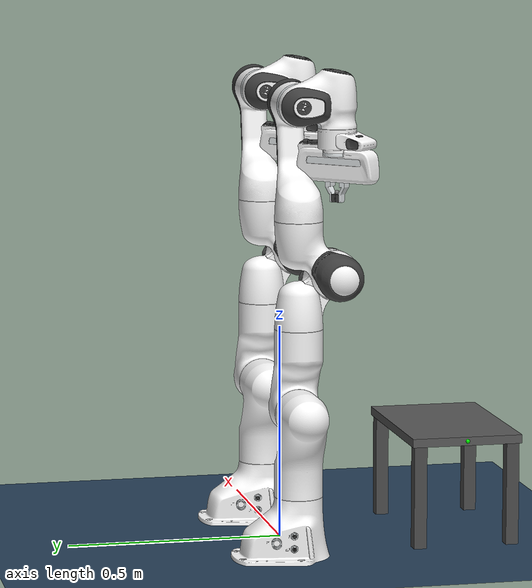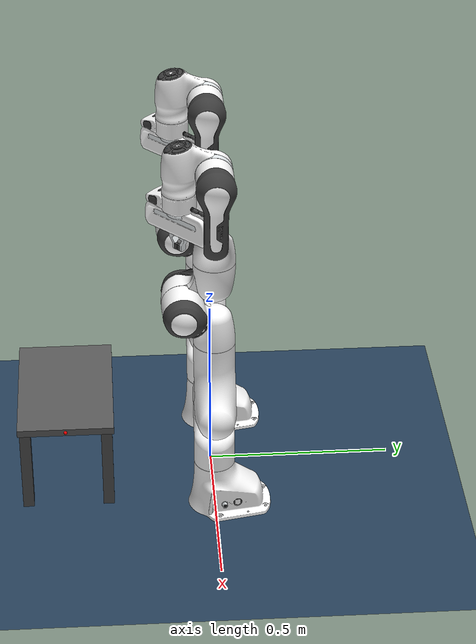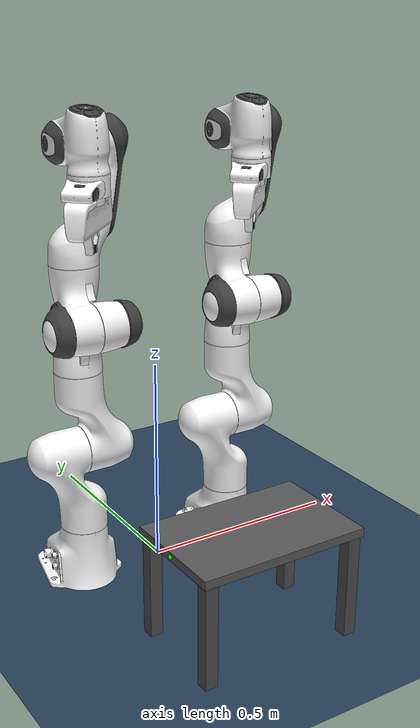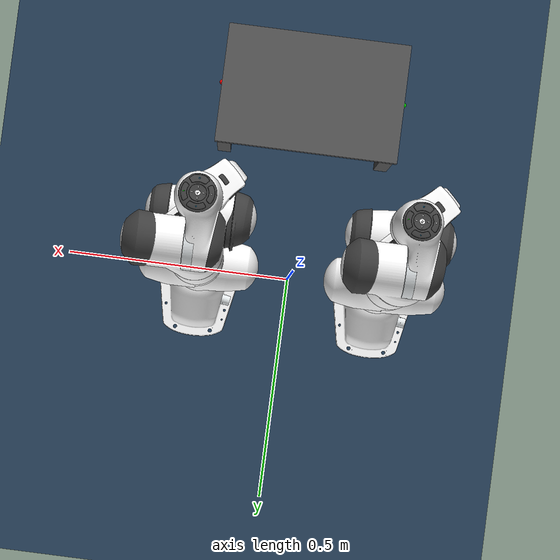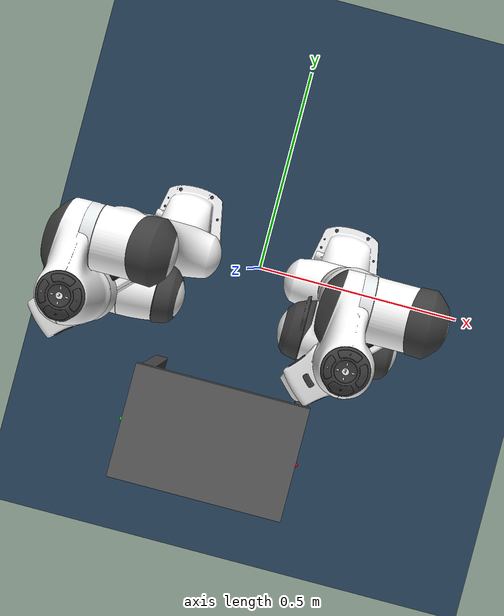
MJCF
<mujoco model="dual panda scene">
  <include file="dual_panda.xml"/>

  <option gravity="0 0 -9.81"/>
  <statistic center="0.3 0 0.4" extent="1"/>

  <visual>
    <headlight diffuse="0.6 0.6 0.6" ambient="0.3 0.3 0.3" specular="0 0 0"/>
    <rgba haze="0.15 0.25 0.35 1"/>
    <global azimuth="120" elevation="-20"/>
  </visual>

  <asset>
    <texture type="skybox" builtin="gradient" rgb1="0.3 0.5 0.7" rgb2="0 0 0" width="512" height="3072"/>
    <texture type="2d" name="groundplane" builtin="checker" mark="edge"
             rgb1="0.2 0.3 0.4" rgb2="0.1 0.2 0.3" markrgb="0.8 0.8 0.8"
             width="300" height="300"/>
    <material name="groundplane" texture="groundplane" texuniform="true"
             texrepeat="5 5" reflectance="0.2"/>
  </asset>

  <worldbody>
    <light pos="0 0 1.5" dir="0 0 -1" directional="true"/>
    <geom name="floor" type="plane" size="0 0 0.05" material="groundplane"/>

    <!-- mocap targets (unchanged) -->
    <body name="target_left"  pos="0.1 0 0.5" quat="0 0 0 1" mocap="true">
      <geom type="box" size="0.05 0.05 0.05" contype="0" conaffinity="0"
            rgba="0.6 0.3 0.3 0.0"/>
    </body>
    <body name="target_right" pos="0.1 0 0.5" quat="0 0 0 1" mocap="true">
      <geom type="box" size="0.05 0.05 0.05" contype="0" conaffinity="0"
            rgba="0.6 0.3 0.3 0.0"/>
    </body>

    <!-- simple table, now really on the ground -->
    <body name="simple_table" pos="0 -0.4 0" quat="0 0 0 1">
      <joint name="table_joint" type="free"/>

      <!-- tabletop -->
      <geom type="box" size="0.20 0.13 0.01" pos="0 0 0.25"
            rgba="0.35 0.35 0.35 1"/>

      <!-- legs -->
      <geom type="box" size="0.015 0.015 0.12" pos=" 0.18  0.11 0.12"
            rgba="0.3 0.3 0.3 1"/>
      <geom type="box" size="0.015 0.015 0.12" pos="-0.18  0.11 0.12"
            rgba="0.3 0.3 0.3 1"/>
      <geom type="box" size="0.015 0.015 0.12" pos=" 0.18 -0.11 0.12"
            rgba="0.3 0.3 0.3 1"/>
      <geom type="box" size="0.015 0.015 0.12" pos="-0.18 -0.11 0.12"
            rgba="0.3 0.3 0.3 1"/>

      <!-- picking sites (mid-thickness) -->
      <site name="site_right" pos="-0.20 0 0.25" size="0.005"
            rgba="1 0 0 1"  type="sphere" euler="-1.57 1.57 0"/>
      <site name="site_left"  pos=" 0.20 0 0.25" size="0.005"
            rgba="0 1 0 1"  type="sphere" euler="-1.57 -1.57 0"/>
    </body>

  </worldbody>
</mujoco>

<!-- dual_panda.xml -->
<mujoco model="dualpanda">
  <compiler angle="radian" meshdir="assets" autolimits="true"/>

  <option integrator="implicitfast"/>

  <default>
    <default class="panda">
      <material specular="0.5" shininess="0.25"/>
      <joint armature="0.1" damping="1" axis="0 0 1" range="-2.8973 2.8973"/>
      <general dyntype="none" biastype="affine" ctrlrange="-2.8973 2.8973" forcerange="-87 87"/>
      <default class="finger">
        <joint axis="0 1 0" type="slide" range="0 0.04"/>
      </default>

      <default class="visual">
        <geom type="mesh" contype="0" conaffinity="0" group="2"/>
      </default>
      <default class="collision">
        <geom type="mesh" group="3"/>
        <default class="fingertip_pad_collision_1">
          <geom type="box" size="0.0085 0.004 0.0085" pos="0 0.0055 0.0445"/>
        </default>
        <default class="fingertip_pad_collision_2">
          <geom type="box" size="0.003 0.002 0.003" pos="0.0055 0.002 0.05"/>
        </default>
        <default class="fingertip_pad_collision_3">
          <geom type="box" size="0.003 0.002 0.003" pos="-0.0055 0.002 0.05"/>
        </default>
        <default class="fingertip_pad_collision_4">
          <geom type="box" size="0.003 0.002 0.0035" pos="0.0055 0.002 0.0395"/>
        </default>
        <default class="fingertip_pad_collision_5">
          <geom type="box" size="0.003 0.002 0.0035" pos="-0.0055 0.002 0.0395"/>
        </default>
      </default>
    </default>
  </default>

  <asset>
    <material class="panda" name="white" rgba="1 1 1 1"/>
    <material class="panda" name="off_white" rgba="0.901961 0.921569 0.929412 1"/>
    <material class="panda" name="black" rgba="0.25 0.25 0.25 1"/>
    <material class="panda" name="green" rgba="0 1 0 1"/>
    <material class="panda" name="light_blue" rgba="0.039216 0.541176 0.780392 1"/>

    <!-- Collision meshes -->
    <mesh name="link0_c" file="link0.stl"/>
    <mesh name="link1_c" file="link1.stl"/>
    <mesh name="link2_c" file="link2.stl"/>
    <mesh name="link3_c" file="link3.stl"/>
    <mesh name="link4_c" file="link4.stl"/>
    <mesh name="link5_c0" file="link5_collision_0.obj"/>
    <mesh name="link5_c1" file="link5_collision_1.obj"/>
    <mesh name="link5_c2" file="link5_collision_2.obj"/>
    <mesh name="link6_c" file="link6.stl"/>
    <mesh name="link7_c" file="link7.stl"/>
    <mesh name="hand_c" file="hand.stl"/>

    <!-- Visual meshes -->
    <mesh file="link0_0.obj"/>
    <mesh file="link0_1.obj"/>
    <mesh file="link0_2.obj"/>
    <mesh file="link0_3.obj"/>
    <mesh file="link0_4.obj"/>
    <mesh file="link0_5.obj"/>
    <mesh file="link0_7.obj"/>
    <mesh file="link0_8.obj"/>
    <mesh file="link0_9.obj"/>
    <mesh file="link0_10.obj"/>
    <mesh file="link0_11.obj"/>
    <mesh file="link1.obj"/>
    <mesh file="link2.obj"/>
    <mesh file="link3_0.obj"/>
    <mesh file="link3_1.obj"/>
    <mesh file="link3_2.obj"/>
    <mesh file="link3_3.obj"/>
    <mesh file="link4_0.obj"/>
    <mesh file="link4_1.obj"/>
    <mesh file="link4_2.obj"/>
    <mesh file="link4_3.obj"/>
    <mesh file="link5_0.obj"/>
    <mesh file="link5_1.obj"/>
    <mesh file="link5_2.obj"/>
    <mesh file="link6_0.obj"/>
    <mesh file="link6_1.obj"/>
    <mesh file="link6_2.obj"/>
    <mesh file="link6_3.obj"/>
    <mesh file="link6_4.obj"/>
    <mesh file="link6_5.obj"/>
    <mesh file="link6_6.obj"/>
    <mesh file="link6_7.obj"/>
    <mesh file="link6_8.obj"/>
    <mesh file="link6_9.obj"/>
    <mesh file="link6_10.obj"/>
    <mesh file="link6_11.obj"/>
    <mesh file="link6_12.obj"/>
    <mesh file="link6_13.obj"/>
    <mesh file="link6_14.obj"/>
    <mesh file="link6_15.obj"/>
    <mesh file="link6_16.obj"/>
    <mesh file="link7_0.obj"/>
    <mesh file="link7_1.obj"/>
    <mesh file="link7_2.obj"/>
    <mesh file="link7_3.obj"/>
    <mesh file="link7_4.obj"/>
    <mesh file="link7_5.obj"/>
    <mesh file="link7_6.obj"/>
    <mesh file="link7_7.obj"/>
    <mesh file="hand_0.obj"/>
    <mesh file="hand_1.obj"/>
    <mesh file="hand_2.obj"/>
    <mesh file="hand_3.obj"/>
    <mesh file="hand_4.obj"/>
    <mesh file="finger_0.obj"/>
    <mesh file="finger_1.obj"/>
  </asset>

  <worldbody>
    <light name="top" pos="0 0 2" mode="trackcom"/>
    <body name="franka1" pos="-0.2 0 0" quat="0.7071 0 0 -0.7071">
        <body name="link0_l" childclass="panda">
            <inertial mass="0.629769" pos="-0.041018 -0.00014 0.049974"
            fullinertia="0.00315 0.00388 0.004285 8.2904e-7 0.00015 8.2299e-6"/>
            <geom mesh="link0_0" material="off_white" class="visual"/>
            <geom mesh="link0_1" material="black" class="visual"/>
            <geom mesh="link0_2" material="off_white" class="visual"/>
            <geom mesh="link0_3" material="black" class="visual"/>
            <geom mesh="link0_4" material="off_white" class="visual"/>
            <geom mesh="link0_5" material="black" class="visual"/>
            <geom mesh="link0_7" material="white" class="visual"/>
            <geom mesh="link0_8" material="white" class="visual"/>
            <geom mesh="link0_9" material="black" class="visual"/>
            <geom mesh="link0_10" material="off_white" class="visual"/>
            <geom mesh="link0_11" material="white" class="visual"/>
            <geom mesh="link0_c" class="collision"/>
            <body name="link1_l" pos="0 0 0.333">
                <inertial mass="4.970684" pos="0.003875 0.002081 -0.04762"
                fullinertia="0.70337 0.70661 0.0091170 -0.00013900 0.0067720 0.019169"/>
                <joint name="joint1_l"/>
                <geom material="white" mesh="link1" class="visual"/>
                <geom mesh="link1_c" class="collision"/>
                <body name="link2" quat="1 -1 0 0">
                    <inertial mass="0.646926" pos="-0.003141 -0.02872 0.003495"
                    fullinertia="0.0079620 2.8110e-2 2.5995e-2 -3.925e-3 1.0254e-2 7.04e-4"/>
                    <joint name="joint2_l" range="-1.7628 1.7628"/>
                    <geom material="white" mesh="link2" class="visual"/>
                    <geom mesh="link2_c" class="collision"/>
                    <body name="link3_l" pos="0 -0.316 0" quat="1 1 0 0">
                        <joint name="joint3_l"/>
                        <inertial mass="3.228604" pos="2.7518e-2 3.9252e-2 -6.6502e-2"
                        fullinertia="3.7242e-2 3.6155e-2 1.083e-2 -4.761e-3 -1.1396e-2 -1.2805e-2"/>
                        <geom mesh="link3_0" material="white" class="visual"/>
                        <geom mesh="link3_1" material="white" class="visual"/>
                        <geom mesh="link3_2" material="white" class="visual"/>
                        <geom mesh="link3_3" material="black" class="visual"/>
                        <geom mesh="link3_c" class="collision"/>
                        <body name="link4_l" pos="0.0825 0 0" quat="1 1 0 0">
                            <inertial mass="3.587895" pos="-5.317e-2 1.04419e-1 2.7454e-2"
                            fullinertia="2.5853e-2 1.9552e-2 2.8323e-2 7.796e-3 -1.332e-3 8.641e-3"/>
                            <joint name="joint4_l" range="-3.0718 -0.0698"/>
                            <geom mesh="link4_0" material="white" class="visual"/>
                            <geom mesh="link4_1" material="white" class="visual"/>
                            <geom mesh="link4_2" material="black" class="visual"/>
                            <geom mesh="link4_3" material="white" class="visual"/>
                            <geom mesh="link4_c" class="collision"/>
                            <body name="link5_l" pos="-0.0825 0.384 0" quat="1 -1 0 0">
                                <inertial mass="1.225946" pos="-1.1953e-2 4.1065e-2 -3.8437e-2"
                                fullinertia="3.5549e-2 2.9474e-2 8.627e-3 -2.117e-3 -4.037e-3 2.29e-4"/>
                                <joint name="joint5_l"/>
                                <geom mesh="link5_0" material="black" class="visual"/>
                                <geom mesh="link5_1" material="white" class="visual"/>
                                <geom mesh="link5_2" material="white" class="visual"/>
                                <geom mesh="link5_c0" class="collision"/>
                                <geom mesh="link5_c1" class="collision"/>
                                <geom mesh="link5_c2" class="collision"/>
                                <body name="link6_l" quat="1 1 0 0">
                                    <inertial mass="1.666555" pos="6.0149e-2 -1.4117e-2 -1.0517e-2"
                                    fullinertia="1.964e-3 4.354e-3 5.433e-3 1.09e-4 -1.158e-3 3.41e-4"/>
                                    <joint name="joint6_l" range="-0.0175 3.7525"/>
                                    <geom mesh="link6_0" material="off_white" class="visual"/>
                                    <geom mesh="link6_1" material="white" class="visual"/>
                                    <geom mesh="link6_2" material="black" class="visual"/>
                                    <geom mesh="link6_3" material="white" class="visual"/>
                                    <geom mesh="link6_4" material="white" class="visual"/>
                                    <geom mesh="link6_5" material="white" class="visual"/>
                                    <geom mesh="link6_6" material="white" class="visual"/>
                                    <geom mesh="link6_7" material="light_blue" class="visual"/>
                                    <geom mesh="link6_8" material="light_blue" class="visual"/>
                                    <geom mesh="link6_9" material="black" class="visual"/>
                                    <geom mesh="link6_10" material="black" class="visual"/>
                                    <geom mesh="link6_11" material="white" class="visual"/>
                                    <geom mesh="link6_12" material="green" class="visual"/>
                                    <geom mesh="link6_13" material="white" class="visual"/>
                                    <geom mesh="link6_14" material="black" class="visual"/>
                                    <geom mesh="link6_15" material="black" class="visual"/>
                                    <geom mesh="link6_16" material="white" class="visual"/>
                                    <geom mesh="link6_c" class="collision"/>
                                    <body name="link7_l" pos="0.088 0 0" quat="1 1 0 0">
                                        <inertial mass="7.35522e-01" pos="1.0517e-2 -4.252e-3 6.1597e-2"
                                        fullinertia="1.2516e-2 1.0027e-2 4.815e-3 -4.28e-4 -1.196e-3 -7.41e-4"/>
                                        <joint name="joint7_l"/>
                                        <geom mesh="link7_0" material="white" class="visual"/>
                                        <geom mesh="link7_1" material="black" class="visual"/>
                                        <geom mesh="link7_2" material="black" class="visual"/>
                                        <geom mesh="link7_3" material="black" class="visual"/>
                                        <geom mesh="link7_4" material="black" class="visual"/>
                                        <geom mesh="link7_5" material="black" class="visual"/>
                                        <geom mesh="link7_6" material="black" class="visual"/>
                                        <geom mesh="link7_7" material="white" class="visual"/>
                                        <geom mesh="link7_c" class="collision"/>
                                        <body name="hand_l" pos="0 0 0.107" quat="0.9238795 0 0 -0.3826834">
                                            <inertial mass="0.73" pos="-0.01 0 0.03" diaginertia="0.001 0.0025 0.0017"/>
                                            <geom mesh="hand_0" material="off_white" class="visual"/>
                                            <geom mesh="hand_1" material="black" class="visual"/>
                                            <geom mesh="hand_2" material="black" class="visual"/>
                                            <geom mesh="hand_3" material="white" class="visual"/>
                                            <geom mesh="hand_4" material="off_white" class="visual"/>
                                            <geom mesh="hand_c" class="collision"/>
                                            <site pos="0 0 0.09" name="attachment_site_left"/>
                                            <body name="left_finger_l" pos="0 0 0.0584">
                                                <inertial mass="0.015" pos="0 0 0" diaginertia="2.375e-6 2.375e-6 7.5e-7"/>
                                                <joint name="finger_joint1_l" class="finger"/>
                                                <geom mesh="finger_0" material="off_white" class="visual"/>
                                                <geom mesh="finger_1" material="black" class="visual"/>
                                                <geom mesh="finger_0" class="collision"/>
                                                <geom class="fingertip_pad_collision_1"/>
                                                <geom class="fingertip_pad_collision_2"/>
                                                <geom class="fingertip_pad_collision_3"/>
                                                <geom class="fingertip_pad_collision_4"/>
                                                <geom class="fingertip_pad_collision_5"/>
                                            </body>
                                            <body name="right_finger_l" pos="0 0 0.0584" quat="0 0 0 1">
                                                <inertial mass="0.015" pos="0 0 0" diaginertia="2.375e-6 2.375e-6 7.5e-7"/>
                                                <joint name="finger_joint2_l" class="finger"/>
                                                <geom mesh="finger_0" material="off_white" class="visual"/>
                                                <geom mesh="finger_1" material="black" class="visual"/>
                                                <geom mesh="finger_0" class="collision"/>
                                                <geom class="fingertip_pad_collision_1"/>
                                                <geom class="fingertip_pad_collision_2"/>
                                                <geom class="fingertip_pad_collision_3"/>
                                                <geom class="fingertip_pad_collision_4"/>
                                                <geom class="fingertip_pad_collision_5"/>
                                            </body>
                                        </body>
                                    </body>
                                </body>
                            </body>
                        </body>
                    </body>
                </body>
            </body>
        </body>
    </body>
    <body name="franka2" pos="0.2 0 0" quat="0.7071 0 0 -0.7071">
        <body name="link0_r" childclass="panda">
            <inertial mass="0.629769" pos="-0.041018 -0.00014 0.049974"
            fullinertia="0.00315 0.00388 0.004285 8.2904e-7 0.00015 8.2299e-6"/>
            <geom mesh="link0_0" material="off_white" class="visual"/>
            <geom mesh="link0_1" material="black" class="visual"/>
            <geom mesh="link0_2" material="off_white" class="visual"/>
            <geom mesh="link0_3" material="black" class="visual"/>
            <geom mesh="link0_4" material="off_white" class="visual"/>
            <geom mesh="link0_5" material="black" class="visual"/>
            <geom mesh="link0_7" material="white" class="visual"/>
            <geom mesh="link0_8" material="white" class="visual"/>
            <geom mesh="link0_9" material="black" class="visual"/>
            <geom mesh="link0_10" material="off_white" class="visual"/>
            <geom mesh="link0_11" material="white" class="visual"/>
            <geom mesh="link0_c" class="collision"/>
            <body name="link1_r" pos="0 0 0.333">
                <inertial mass="4.970684" pos="0.003875 0.002081 -0.04762"
                fullinertia="0.70337 0.70661 0.0091170 -0.00013900 0.0067720 0.019169"/>
                <joint name="joint1_r"/>
                <geom material="white" mesh="link1" class="visual"/>
                <geom mesh="link1_c" class="collision"/>
                <body name="link2_r" quat="1 -1 0 0">
                    <inertial mass="0.646926" pos="-0.003141 -0.02872 0.003495"
                    fullinertia="0.0079620 2.8110e-2 2.5995e-2 -3.925e-3 1.0254e-2 7.04e-4"/>
                    <joint name="joint2_r" range="-1.7628 1.7628"/>
                    <geom material="white" mesh="link2" class="visual"/>
                    <geom mesh="link2_c" class="collision"/>
                    <body name="link3_r" pos="0 -0.316 0" quat="1 1 0 0">
                        <joint name="joint3_r"/>
                        <inertial mass="3.228604" pos="2.7518e-2 3.9252e-2 -6.6502e-2"
                        fullinertia="3.7242e-2 3.6155e-2 1.083e-2 -4.761e-3 -1.1396e-2 -1.2805e-2"/>
                        <geom mesh="link3_0" material="white" class="visual"/>
                        <geom mesh="link3_1" material="white" class="visual"/>
                        <geom mesh="link3_2" material="white" class="visual"/>
                        <geom mesh="link3_3" material="black" class="visual"/>
                        <geom mesh="link3_c" class="collision"/>
                        <body name="link4_r" pos="0.0825 0 0" quat="1 1 0 0">
                            <inertial mass="3.587895" pos="-5.317e-2 1.04419e-1 2.7454e-2"
                            fullinertia="2.5853e-2 1.9552e-2 2.8323e-2 7.796e-3 -1.332e-3 8.641e-3"/>
                            <joint name="joint4_r" range="-3.0718 -0.0698"/>
                            <geom mesh="link4_0" material="white" class="visual"/>
                            <geom mesh="link4_1" material="white" class="visual"/>
                            <geom mesh="link4_2" material="black" class="visual"/>
                            <geom mesh="link4_3" material="white" class="visual"/>
                            <geom mesh="link4_c" class="collision"/>
                            <body name="link5_r" pos="-0.0825 0.384 0" quat="1 -1 0 0">
                                <inertial mass="1.225946" pos="-1.1953e-2 4.1065e-2 -3.8437e-2"
                                fullinertia="3.5549e-2 2.9474e-2 8.627e-3 -2.117e-3 -4.037e-3 2.29e-4"/>
                                <joint name="joint5_r"/>
                                <geom mesh="link5_0" material="black" class="visual"/>
                                <geom mesh="link5_1" material="white" class="visual"/>
                                <geom mesh="link5_2" material="white" class="visual"/>
                                <geom mesh="link5_c0" class="collision"/>
                                <geom mesh="link5_c1" class="collision"/>
                                <geom mesh="link5_c2" class="collision"/>
                                <body name="link6_r" quat="1 1 0 0">
                                    <inertial mass="1.666555" pos="6.0149e-2 -1.4117e-2 -1.0517e-2"
                                    fullinertia="1.964e-3 4.354e-3 5.433e-3 1.09e-4 -1.158e-3 3.41e-4"/>
                                    <joint name="joint6_r" range="-0.0175 3.7525"/>
                                    <geom mesh="link6_0" material="off_white" class="visual"/>
                                    <geom mesh="link6_1" material="white" class="visual"/>
                                    <geom mesh="link6_2" material="black" class="visual"/>
                                    <geom mesh="link6_3" material="white" class="visual"/>
                                    <geom mesh="link6_4" material="white" class="visual"/>
                                    <geom mesh="link6_5" material="white" class="visual"/>
                                    <geom mesh="link6_6" material="white" class="visual"/>
                                    <geom mesh="link6_7" material="light_blue" class="visual"/>
                                    <geom mesh="link6_8" material="light_blue" class="visual"/>
                                    <geom mesh="link6_9" material="black" class="visual"/>
                                    <geom mesh="link6_10" material="black" class="visual"/>
                                    <geom mesh="link6_11" material="white" class="visual"/>
                                    <geom mesh="link6_12" material="green" class="visual"/>
                                    <geom mesh="link6_13" material="white" class="visual"/>
                                    <geom mesh="link6_14" material="black" class="visual"/>
                                    <geom mesh="link6_15" material="black" class="visual"/>
                                    <geom mesh="link6_16" material="white" class="visual"/>
                                    <geom mesh="link6_c" class="collision"/>
                                    <body name="link7_r" pos="0.088 0 0" quat="1 1 0 0">
                                        <inertial mass="7.35522e-01" pos="1.0517e-2 -4.252e-3 6.1597e-2"
                                        fullinertia="1.2516e-2 1.0027e-2 4.815e-3 -4.28e-4 -1.196e-3 -7.41e-4"/>
                                        <joint name="joint7_r"/>
                                        <geom mesh="link7_0" material="white" class="visual"/>
                                        <geom mesh="link7_1" material="black" class="visual"/>
                                        <geom mesh="link7_2" material="black" class="visual"/>
                                        <geom mesh="link7_3" material="black" class="visual"/>
                                        <geom mesh="link7_4" material="black" class="visual"/>
                                        <geom mesh="link7_5" material="black" class="visual"/>
                                        <geom mesh="link7_6" material="black" class="visual"/>
                                        <geom mesh="link7_7" material="white" class="visual"/>
                                        <geom mesh="link7_c" class="collision"/>
                                        <body name="hand_r" pos="0 0 0.107" quat="0.9238795 0 0 -0.3826834">
                                            <inertial mass="0.73" pos="-0.01 0 0.03" diaginertia="0.001 0.0025 0.0017"/>
                                            <geom mesh="hand_0" material="off_white" class="visual"/>
                                            <geom mesh="hand_1" material="black" class="visual"/>
                                            <geom mesh="hand_2" material="black" class="visual"/>
                                            <geom mesh="hand_3" material="white" class="visual"/>
                                            <geom mesh="hand_4" material="off_white" class="visual"/>
                                            <geom mesh="hand_c" class="collision"/>
                                            <site pos="0 0 0.09" name="attachment_site_right"/>
                                            <body name="left_finger_r" pos="0 0 0.0584">
                                                <inertial mass="0.015" pos="0 0 0" diaginertia="2.375e-6 2.375e-6 7.5e-7"/>
                                                <joint name="finger_joint1_r" class="finger"/>
                                                <geom mesh="finger_0" material="off_white" class="visual"/>
                                                <geom mesh="finger_1" material="black" class="visual"/>
                                                <geom mesh="finger_0" class="collision"/>
                                                <geom class="fingertip_pad_collision_1"/>
                                                <geom class="fingertip_pad_collision_2"/>
                                                <geom class="fingertip_pad_collision_3"/>
                                                <geom class="fingertip_pad_collision_4"/>
                                                <geom class="fingertip_pad_collision_5"/>
                                            </body>
                                            <body name="right_finger_r" pos="0 0 0.0584" quat="0 0 0 1">
                                                <inertial mass="0.015" pos="0 0 0" diaginertia="2.375e-6 2.375e-6 7.5e-7"/>
                                                <joint name="finger_joint2_r" class="finger"/>
                                                <geom mesh="finger_0" material="off_white" class="visual"/>
                                                <geom mesh="finger_1" material="black" class="visual"/>
                                                <geom mesh="finger_0" class="collision"/>
                                                <geom class="fingertip_pad_collision_1"/>
                                                <geom class="fingertip_pad_collision_2"/>
                                                <geom class="fingertip_pad_collision_3"/>
                                                <geom class="fingertip_pad_collision_4"/>
                                                <geom class="fingertip_pad_collision_5"/>
                                            </body>
                                        </body>
                                    </body>
                                </body>
                            </body>
                        </body>
                    </body>
                </body>
            </body>
        </body>
    </body>

  </worldbody>

  <tendon>
    <fixed name="split1">
      <joint joint="finger_joint1_l" coef="2.5"/>
      <joint joint="finger_joint2_l" coef="2.5"/>
    </fixed>
    <fixed name="split2">
      <joint joint="finger_joint1_r" coef="2.5"/>
      <joint joint="finger_joint2_r" coef="2.5"/>
    </fixed>
  </tendon>

  <equality>
    <joint joint1="finger_joint1_l" joint2="finger_joint2_l" solimp="0.95 0.99 0.001" solref="0.005 1"/>
    <joint joint1="finger_joint1_r" joint2="finger_joint2_r" solimp="0.95 0.99 0.001" solref="0.005 1"/>
  </equality>

  <actuator>
    <general class="panda" name="actuator1_l" joint="joint1_l" gainprm="4500" biasprm="0 -4500 -450"/>
    <general class="panda" name="actuator2_l" joint="joint2_l" gainprm="4500" biasprm="0 -4500 -450"
      ctrlrange="-1.7628 1.7628"/>
    <general class="panda" name="actuator3_l" joint="joint3_l" gainprm="3500" biasprm="0 -3500 -350"/>
    <general class="panda" name="actuator4_l" joint="joint4_l" gainprm="3500" biasprm="0 -3500 -350"
      ctrlrange="-3.0718 -0.0698"/>
    <general class="panda" name="actuator5_l" joint="joint5_l" gainprm="2000" biasprm="0 -2000 -200" forcerange="-12 12"/>
    <general class="panda" name="actuator6_l" joint="joint6_l" gainprm="2000" biasprm="0 -2000 -200" forcerange="-12 12"
      ctrlrange="-0.0175 3.7525"/>
    <general class="panda" name="actuator7_l" joint="joint7_l" gainprm="2000" biasprm="0 -2000 -200" forcerange="-12 12"/>
    <!-- Remap original ctrlrange (0, 0.04) to (0, 255): 0.04 * 100 / 255 = 0.01568627451 -->
    <general class="panda" name="actuator8_l" tendon="split1" forcerange="-100 100" ctrlrange="0 255"
      gainprm="0.10 0 0" biasprm="0 -150 -10"/>

    <general class="panda" name="actuator1_r" joint="joint1_r" gainprm="4500" biasprm="0 -4500 -450"/>
    <general class="panda" name="actuator2_r" joint="joint2_r" gainprm="4500" biasprm="0 -4500 -450"
      ctrlrange="-1.7628 1.7628"/>
    <general class="panda" name="actuator3_r" joint="joint3_r" gainprm="3500" biasprm="0 -3500 -350"/>
    <general class="panda" name="actuator4_r" joint="joint4_r" gainprm="3500" biasprm="0 -3500 -350"
      ctrlrange="-3.0718 -0.0698"/>
    <general class="panda" name="actuator5_r" joint="joint5_r" gainprm="2000" biasprm="0 -2000 -200" forcerange="-12 12"/>
    <general class="panda" name="actuator6_r" joint="joint6_r" gainprm="2000" biasprm="0 -2000 -200" forcerange="-12 12"
      ctrlrange="-0.0175 3.7525"/>
    <general class="panda" name="actuator7_r" joint="joint7_r" gainprm="2000" biasprm="0 -2000 -200" forcerange="-12 12"/>
    <!-- Remap original ctrlrange (0, 0.04) to (0, 255): 0.04 * 100 / 255 = 0.01568627451 -->
    <general class="panda" name="actuator8_r" tendon="split2" forcerange="-100 100" ctrlrange="0 255"
      gainprm="0.10 0 0" biasprm="0 -150 -10"/>

  </actuator>

  <keyframe>
    <key name="home1" qpos="0 0 0 -1.57079 0 1.57079 -0.7853 0.04 0.04
                            0 0 0 -1.57079 0 1.57079 -0.7853 0.04 0.04
                            0 -0.4 0.0 1 0 0 0"
            ctrl="0 0 0 -1.57079 0 1.57079 -0.7853 255  0 0 0 -1.57079 0 1.57079 -0.7853 255"/>
  </keyframe>

</mujoco>
